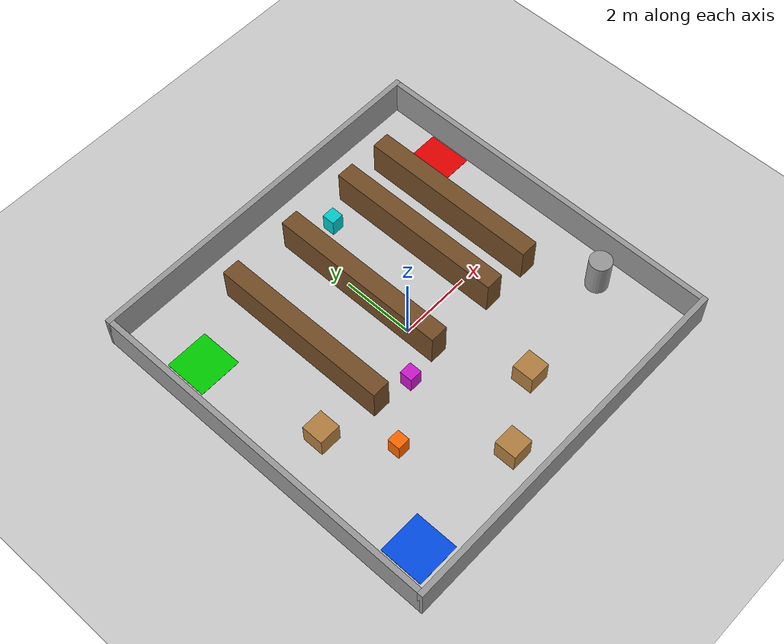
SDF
<?xml version="1.0" ?>
<sdf version="1.6">
  <world name="warehouse">
    <physics type="ode">
      <real_time_update_rate>1000.0</real_time_update_rate>
      <max_step_size>0.001</max_step_size>
      <real_time_factor>1</real_time_factor>
    </physics>
    <include><uri>model://ground_plane</uri></include>
    <include><uri>model://sun</uri></include>
    <gui><camera name="user_camera"><pose>0 -9 11 0 0.9 1.5708</pose></camera></gui>

    <model name="wall_n"><static>true</static><pose>0 5.0 0.5 0 0 0</pose>
      <link name="link"><collision name="c"><geometry><box><size>10.15 0.15 1.0</size></box></geometry></collision>
        <visual name="v"><geometry><box><size>10.15 0.15 1.0</size></box></geometry>
          <material><ambient>0.6 0.6 0.6 1</ambient><diffuse>0.6 0.6 0.6 1</diffuse></material>
        </visual></link></model>
    <model name="wall_s"><static>true</static><pose>0 -5.0 0.5 0 0 0</pose>
      <link name="link"><collision name="c"><geometry><box><size>10.15 0.15 1.0</size></box></geometry></collision>
        <visual name="v"><geometry><box><size>10.15 0.15 1.0</size></box></geometry>
          <material><ambient>0.6 0.6 0.6 1</ambient><diffuse>0.6 0.6 0.6 1</diffuse></material>
        </visual></link></model>
    <model name="wall_e"><static>true</static><pose>5.0 0 0.5 0 0 0</pose>
      <link name="link"><collision name="c"><geometry><box><size>0.15 10.0 1.0</size></box></geometry></collision>
        <visual name="v"><geometry><box><size>0.15 10.0 1.0</size></box></geometry>
          <material><ambient>0.6 0.6 0.6 1</ambient><diffuse>0.6 0.6 0.6 1</diffuse></material>
        </visual></link></model>
    <model name="wall_w"><static>true</static><pose>-5.0 0 0.5 0 0 0</pose>
      <link name="link"><collision name="c"><geometry><box><size>0.15 10.0 1.0</size></box></geometry></collision>
        <visual name="v"><geometry><box><size>0.15 10.0 1.0</size></box></geometry>
          <material><ambient>0.6 0.6 0.6 1</ambient><diffuse>0.6 0.6 0.6 1</diffuse></material>
        </visual></link></model>
    <model name="shelf_1"><static>true</static><pose>-2.0 1.5 0.5 0 0 0</pose>
      <link name="link"><collision name="c"><geometry><box><size>0.5 5.0 1.0</size></box></geometry></collision>
        <visual name="v"><geometry><box><size>0.5 5.0 1.0</size></box></geometry>
          <material><ambient>0.45 0.3 0.15 1</ambient><diffuse>0.45 0.3 0.15 1</diffuse></material>
        </visual></link></model>
    <model name="shelf_2"><static>true</static><pose>0.0 1.5 0.5 0 0 0</pose>
      <link name="link"><collision name="c"><geometry><box><size>0.5 5.0 1.0</size></box></geometry></collision>
        <visual name="v"><geometry><box><size>0.5 5.0 1.0</size></box></geometry>
          <material><ambient>0.45 0.3 0.15 1</ambient><diffuse>0.45 0.3 0.15 1</diffuse></material>
        </visual></link></model>
    <model name="shelf_3"><static>true</static><pose>2.0 1.5 0.5 0 0 0</pose>
      <link name="link"><collision name="c"><geometry><box><size>0.5 5.0 1.0</size></box></geometry></collision>
        <visual name="v"><geometry><box><size>0.5 5.0 1.0</size></box></geometry>
          <material><ambient>0.45 0.3 0.15 1</ambient><diffuse>0.45 0.3 0.15 1</diffuse></material>
        </visual></link></model>
    <model name="shelf_4"><static>true</static><pose>3.3 1.5 0.5 0 0 0</pose>
      <link name="link"><collision name="c"><geometry><box><size>0.5 5.0 1.0</size></box></geometry></collision>
        <visual name="v"><geometry><box><size>0.5 5.0 1.0</size></box></geometry>
          <material><ambient>0.45 0.3 0.15 1</ambient><diffuse>0.45 0.3 0.15 1</diffuse></material>
        </visual></link></model>
    <model name="crate_1"><static>true</static><pose>-3.5 -0.5 0.3 0 0 0</pose>
      <link name="link"><collision name="c"><geometry><box><size>0.6 0.6 0.6</size></box></geometry></collision>
        <visual name="v"><geometry><box><size>0.6 0.6 0.6</size></box></geometry>
          <material><ambient>0.7 0.5 0.25 1</ambient><diffuse>0.7 0.5 0.25 1</diffuse></material>
        </visual></link></model>
    <model name="crate_2"><static>true</static><pose>1.0 -3.0 0.3 0 0 0</pose>
      <link name="link"><collision name="c"><geometry><box><size>0.6 0.6 0.6</size></box></geometry></collision>
        <visual name="v"><geometry><box><size>0.6 0.6 0.6</size></box></geometry>
          <material><ambient>0.7 0.5 0.25 1</ambient><diffuse>0.7 0.5 0.25 1</diffuse></material>
        </visual></link></model>
    <model name="crate_3"><static>true</static><pose>-0.8 -4.0 0.3 0 0 0</pose>
      <link name="link"><collision name="c"><geometry><box><size>0.6 0.6 0.6</size></box></geometry></collision>
        <visual name="v"><geometry><box><size>0.6 0.6 0.6</size></box></geometry>
          <material><ambient>0.7 0.5 0.25 1</ambient><diffuse>0.7 0.5 0.25 1</diffuse></material>
        </visual></link></model>
    <model name="pillar_1"><static>true</static><pose>4.2 -2.5 0.5 0 0 0</pose>
      <link name="link">
        <collision name="c"><geometry><cylinder><radius>0.3</radius><length>1.0</length></cylinder></geometry></collision>
        <visual name="v"><geometry><cylinder><radius>0.3</radius><length>1.0</length></cylinder></geometry>
          <material><ambient>0.6 0.6 0.6 1</ambient><diffuse>0.6 0.6 0.6 1</diffuse></material>
        </visual></link></model>
    <model name="pickup_zone"><static>true</static><pose>-4.0 3.0 0.006 0 0 0</pose>
      <link name="link">
        <visual name="v"><geometry><box><size>1.2 1.2 0.01</size></box></geometry>
          <material><ambient>0 0.8 0 1</ambient><diffuse>0 0.8 0 1</diffuse></material>
        </visual></link></model>
    <model name="dropoff_zone"><static>true</static><pose>4.3 3.0 0.006 0 0 0</pose>
      <link name="link">
        <visual name="v"><geometry><box><size>1.2 1.2 0.01</size></box></geometry>
          <material><ambient>0.9 0 0 1</ambient><diffuse>0.9 0 0 1</diffuse></material>
        </visual></link></model>
    <model name="home_zone"><static>true</static><pose>-4.0 -4.0 0.006 0 0 0</pose>
      <link name="link">
        <visual name="v"><geometry><box><size>1.2 1.2 0.01</size></box></geometry>
          <material><ambient>0 0.3 0.9 1</ambient><diffuse>0 0.3 0.9 1</diffuse></material>
        </visual></link></model>
    <model name="obstacle_1"><pose>-2.5 -2.0 0.255 0 0 0</pose>
      <link name="base_link">
        <kinematic>false</kinematic>
        <gravity>true</gravity>
        <inertial>
          <mass>20.0</mass>
          <pose>0 0 -0.20 0 0 0</pose>
          <inertia>
            <ixx>10.0</ixx><ixy>0.0</ixy><ixz>0.0</ixz>
            <iyy>10.0</iyy><iyz>0.0</iyz>
            <izz>1.0</izz>
          </inertia>
        </inertial>
        <collision name="c">
          <geometry><box><size>0.35 0.35 0.5</size></box></geometry>
          <surface>
            <friction>
              <ode>
                <mu>0.0</mu>
                <mu2>0.0</mu2>
                <slip1>1.0</slip1>
                <slip2>1.0</slip2>
              </ode>
            </friction>
          </surface>
        </collision>
        <visual name="v">
          <geometry><box><size>0.35 0.35 0.5</size></box></geometry>
          <material><ambient>1.0 0.4 0.0 1</ambient><diffuse>1.0 0.4 0.0 1</diffuse></material>
        </visual>
      </link>
      <plugin name="obstacle_1_drive" filename="libgazebo_ros_planar_move.so">
        <ros><namespace>/obstacle_1</namespace></ros>
        <command_topic>cmd_vel</command_topic>
        <publish_odom>true</publish_odom>
        <publish_odom_tf>false</publish_odom_tf>
        <odometry_Rate>20.0</odometry_Rate>
        <robot_base_frame>base_link</robot_base_frame>
      </plugin>
    </model>
    <model name="obstacle_2"><pose>-1.0 -1.0 0.255 0 0 0</pose>
      <link name="base_link">
        <kinematic>false</kinematic>
        <gravity>true</gravity>
        <inertial>
          <mass>20.0</mass>
          <pose>0 0 -0.20 0 0 0</pose>
          <inertia>
            <ixx>10.0</ixx><ixy>0.0</ixy><ixz>0.0</ixz>
            <iyy>10.0</iyy><iyz>0.0</iyz>
            <izz>1.0</izz>
          </inertia>
        </inertial>
        <collision name="c">
          <geometry><box><size>0.35 0.35 0.5</size></box></geometry>
          <surface>
            <friction>
              <ode>
                <mu>0.0</mu>
                <mu2>0.0</mu2>
                <slip1>1.0</slip1>
                <slip2>1.0</slip2>
              </ode>
            </friction>
          </surface>
        </collision>
        <visual name="v">
          <geometry><box><size>0.35 0.35 0.5</size></box></geometry>
          <material><ambient>0.8 0.1 0.8 1</ambient><diffuse>0.8 0.1 0.8 1</diffuse></material>
        </visual>
      </link>
      <plugin name="obstacle_2_drive" filename="libgazebo_ros_planar_move.so">
        <ros><namespace>/obstacle_2</namespace></ros>
        <command_topic>cmd_vel</command_topic>
        <publish_odom>true</publish_odom>
        <publish_odom_tf>false</publish_odom_tf>
        <odometry_Rate>20.0</odometry_Rate>
        <robot_base_frame>base_link</robot_base_frame>
      </plugin>
    </model>
    <model name="obstacle_3"><pose>1.0 3.5 0.255 0 0 0</pose>
      <link name="base_link">
        <kinematic>false</kinematic>
        <gravity>true</gravity>
        <inertial>
          <mass>20.0</mass>
          <pose>0 0 -0.20 0 0 0</pose>
          <inertia>
            <ixx>10.0</ixx><ixy>0.0</ixy><ixz>0.0</ixz>
            <iyy>10.0</iyy><iyz>0.0</iyz>
            <izz>1.0</izz>
          </inertia>
        </inertial>
        <collision name="c">
          <geometry><box><size>0.35 0.35 0.5</size></box></geometry>
          <surface>
            <friction>
              <ode>
                <mu>0.0</mu>
                <mu2>0.0</mu2>
                <slip1>1.0</slip1>
                <slip2>1.0</slip2>
              </ode>
            </friction>
          </surface>
        </collision>
        <visual name="v">
          <geometry><box><size>0.35 0.35 0.5</size></box></geometry>
          <material><ambient>0.0 0.8 0.8 1</ambient><diffuse>0.0 0.8 0.8 1</diffuse></material>
        </visual>
      </link>
      <plugin name="obstacle_3_drive" filename="libgazebo_ros_planar_move.so">
        <ros><namespace>/obstacle_3</namespace></ros>
        <command_topic>cmd_vel</command_topic>
        <publish_odom>true</publish_odom>
        <publish_odom_tf>false</publish_odom_tf>
        <odometry_Rate>20.0</odometry_Rate>
        <robot_base_frame>base_link</robot_base_frame>
      </plugin>
    </model>
  </world>
</sdf>
